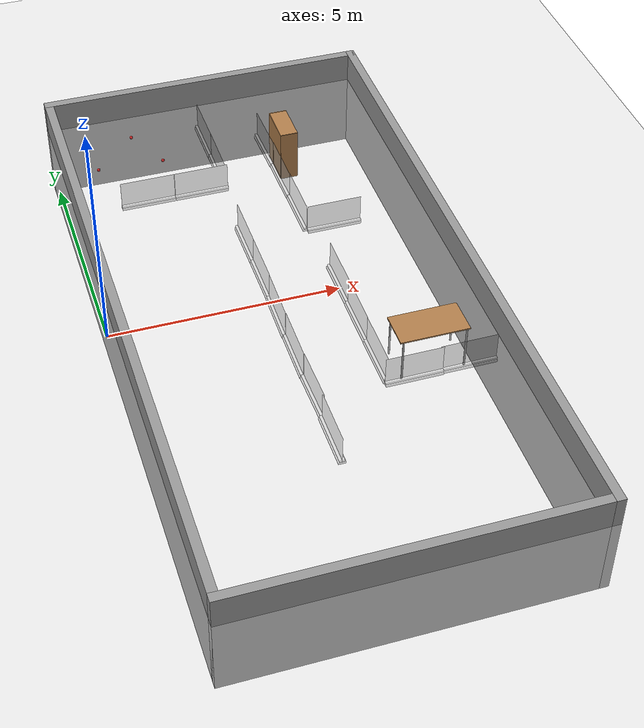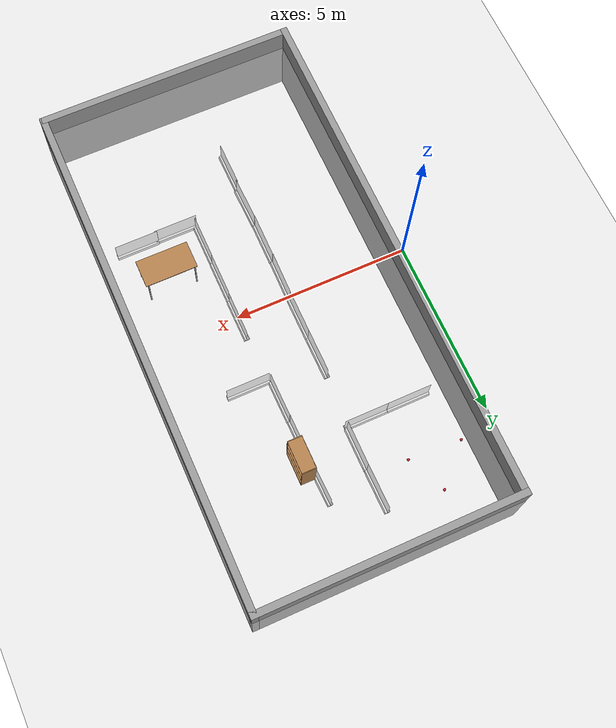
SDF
<sdf version="1.4">
 <world name="default">
  <light name="sun" type="directional">
   <pose>0 0 10 0 -0 0</pose>
   <diffuse>0.8 0.8 0.8 1</diffuse>
   <specular>0.2 0.2 0.2 1</specular>
   <attenuation>
    <range>1000</range>
    <constant>0.9</constant>
    <linear>0.01</linear>
    <quadratic>0.001</quadratic>
   </attenuation>
   <direction>-0.5 0.1 -0.9</direction>
  </light>
  <model name="ground_plane">
   <static>1</static>
   <link name="link">
    <collision name="collision">
     <geometry><plane><normal>0 0 1</normal><size>100 100</size></plane></geometry>
     <surface><friction><ode><mu>100</mu><mu2>50</mu2></ode></friction></surface>
    </collision>
    <visual name="visual">
     <cast_shadows>0</cast_shadows>
     <geometry><plane><normal>0 0 1</normal><size>100 100</size></plane></geometry>
     <material>
      <script><uri>file://media/materials/scripts/gazebo.material</uri><name>Gazebo/Grey</name></script>
     </material>
    </visual>
    <velocity_decay><linear>0</linear><angular>0</angular></velocity_decay>
   </link>
  </model>
  <physics type="ode">
   <max_step_size>0.001</max_step_size>
   <real_time_factor>1</real_time_factor>
   <real_time_update_rate>1000</real_time_update_rate>
   <gravity>0 0 -9.8</gravity>
  </physics>
  <scene><ambient>0.4 0.4 0.4 1</ambient><background>0.7 0.7 0.7 1</background><shadows>1</shadows></scene>
  <spherical_coordinates>
   <surface_model>EARTH_WGS84</surface_model>
   <latitude_deg>0</latitude_deg>
   <longitude_deg>0</longitude_deg>
   <elevation>0</elevation>
   <heading_deg>0</heading_deg>
  </spherical_coordinates>
  <model name="fleming_wall_ghost_ghost">
   <static>1</static>
   <link name="wall">
    <pose>0 0 0.0254 0 -0 0</pose>
    <collision name="base_collision"><geometry><box><size>1.2192 0.1524 0.0508</size></box></geometry></collision>
    <visual name="base_visual">
     <transparency>0.5</transparency>
     <geometry><box><size>1.2192 0.1524 0.0508</size></box></geometry>
     <material>
      <script>
       <uri>model://fleming_wall_ghost/materials/scripts</uri>
       <uri>model://fleming_wall_ghost/materials/textures</uri>
       <name>FlemingWall/Image</name>
      </script>
     </material>
    </visual>
    <visual name="front_strut_visual">
     <transparency>0.5</transparency>
     <pose>0 0.028575 0.0508 0 -0 0</pose>
     <geometry><box><size>1.2192 0.0508 0.0508</size></box></geometry>
     <material>
      <script>
       <uri>model://fleming_wall_ghost/materials/scripts</uri>
       <uri>model://fleming_wall_ghost/materials/textures</uri>
       <name>FlemingWall/Image</name>
      </script>
     </material>
    </visual>
    <visual name="back_strut_visual">
     <transparency>0.5</transparency>
     <pose>0 -0.028575 0.0508 0 -0 0</pose>
     <geometry><box><size>1.2192 0.0508 0.0508</size></box></geometry>
     <material>
      <script>
       <uri>model://fleming_wall_ghost/materials/scripts</uri>
       <uri>model://fleming_wall_ghost/materials/textures</uri>
       <name>FlemingWall/Image</name>
      </script>
     </material>
    </visual>
    <visual name="panel_visual">
     <transparency>0.5</transparency>
     <pose>0 0 0.3556 0 -0 0</pose>
     <geometry><box><size>1.2192 0.003175 0.6096</size></box></geometry>
     <material>
      <script>
       <uri>model://fleming_wall_ghost/materials/scripts</uri>
       <uri>model://fleming_wall_ghost/materials/textures</uri>
       <name>FlemingWall/Image</name>
      </script>
     </material>
    </visual>
    <velocity_decay><linear>0</linear><angular>0</angular></velocity_decay>
   </link>
   <pose>3.49426 0.714997 0 0 0 -1.57256</pose>
  </model>
  <model name="fleming_wall_ghost_ghost_0">
   <static>1</static>
   <link name="wall">
    <pose>0 0 0.0254 0 -0 0</pose>
    <collision name="base_collision"><geometry><box><size>1.2192 0.1524 0.0508</size></box></geometry></collision>
    <visual name="base_visual">
     <transparency>0.5</transparency>
     <geometry><box><size>1.2192 0.1524 0.0508</size></box></geometry>
     <material>
      <script>
       <uri>model://fleming_wall_ghost/materials/scripts</uri>
       <uri>model://fleming_wall_ghost/materials/textures</uri>
       <name>FlemingWall/Image</name>
      </script>
     </material>
    </visual>
    <visual name="front_strut_visual">
     <transparency>0.5</transparency>
     <pose>0 0.028575 0.0508 0 -0 0</pose>
     <geometry><box><size>1.2192 0.0508 0.0508</size></box></geometry>
     <material>
      <script>
       <uri>model://fleming_wall_ghost/materials/scripts</uri>
       <uri>model://fleming_wall_ghost/materials/textures</uri>
       <name>FlemingWall/Image</name>
      </script>
     </material>
    </visual>
    <visual name="back_strut_visual">
     <transparency>0.5</transparency>
     <pose>0 -0.028575 0.0508 0 -0 0</pose>
     <geometry><box><size>1.2192 0.0508 0.0508</size></box></geometry>
     <material>
      <script>
       <uri>model://fleming_wall_ghost/materials/scripts</uri>
       <uri>model://fleming_wall_ghost/materials/textures</uri>
       <name>FlemingWall/Image</name>
      </script>
     </material>
    </visual>
    <visual name="panel_visual">
     <transparency>0.5</transparency>
     <pose>0 0 0.3556 0 -0 0</pose>
     <geometry><box><size>1.2192 0.003175 0.6096</size></box></geometry>
     <material>
      <script>
       <uri>model://fleming_wall_ghost/materials/scripts</uri>
       <uri>model://fleming_wall_ghost/materials/textures</uri>
       <name>FlemingWall/Image</name>
      </script>
     </material>
    </visual>
    <velocity_decay><linear>0</linear><angular>0</angular></velocity_decay>
   </link>
   <pose>3.49471 1.93732 0 0 0 -1.56922</pose>
  </model>
  <model name="fleming_wall_ghost_ghost_1">
   <static>1</static>
   <link name="wall">
    <pose>0 0 0.0254 0 -0 0</pose>
    <collision name="base_collision"><geometry><box><size>1.2192 0.1524 0.0508</size></box></geometry></collision>
    <visual name="base_visual">
     <transparency>0.5</transparency>
     <geometry><box><size>1.2192 0.1524 0.0508</size></box></geometry>
     <material>
      <script>
       <uri>model://fleming_wall_ghost/materials/scripts</uri>
       <uri>model://fleming_wall_ghost/materials/textures</uri>
       <name>FlemingWall/Image</name>
      </script>
     </material>
    </visual>
    <visual name="front_strut_visual">
     <transparency>0.5</transparency>
     <pose>0 0.028575 0.0508 0 -0 0</pose>
     <geometry><box><size>1.2192 0.0508 0.0508</size></box></geometry>
     <material>
      <script>
       <uri>model://fleming_wall_ghost/materials/scripts</uri>
       <uri>model://fleming_wall_ghost/materials/textures</uri>
       <name>FlemingWall/Image</name>
      </script>
     </material>
    </visual>
    <visual name="back_strut_visual">
     <transparency>0.5</transparency>
     <pose>0 -0.028575 0.0508 0 -0 0</pose>
     <geometry><box><size>1.2192 0.0508 0.0508</size></box></geometry>
     <material>
      <script>
       <uri>model://fleming_wall_ghost/materials/scripts</uri>
       <uri>model://fleming_wall_ghost/materials/textures</uri>
       <name>FlemingWall/Image</name>
      </script>
     </material>
    </visual>
    <visual name="panel_visual">
     <transparency>0.5</transparency>
     <pose>0 0 0.3556 0 -0 0</pose>
     <geometry><box><size>1.2192 0.003175 0.6096</size></box></geometry>
     <material>
      <script>
       <uri>model://fleming_wall_ghost/materials/scripts</uri>
       <uri>model://fleming_wall_ghost/materials/textures</uri>
       <name>FlemingWall/Image</name>
      </script>
     </material>
    </visual>
    <velocity_decay><linear>0</linear><angular>0</angular></velocity_decay>
   </link>
   <pose>1.82476 3.99325 0 0 -0 0</pose>
  </model>
  <model name="fleming_wall_ghost_ghost_2">
   <static>1</static>
   <link name="wall">
    <pose>0 0 0.0254 0 -0 0</pose>
    <collision name="base_collision"><geometry><box><size>1.2192 0.1524 0.0508</size></box></geometry></collision>
    <visual name="base_visual">
     <transparency>0.5</transparency>
     <geometry><box><size>1.2192 0.1524 0.0508</size></box></geometry>
     <material>
      <script>
       <uri>model://fleming_wall_ghost/materials/scripts</uri>
       <uri>model://fleming_wall_ghost/materials/textures</uri>
       <name>FlemingWall/Image</name>
      </script>
     </material>
    </visual>
    <visual name="front_strut_visual">
     <transparency>0.5</transparency>
     <pose>0 0.028575 0.0508 0 -0 0</pose>
     <geometry><box><size>1.2192 0.0508 0.0508</size></box></geometry>
     <material>
      <script>
       <uri>model://fleming_wall_ghost/materials/scripts</uri>
       <uri>model://fleming_wall_ghost/materials/textures</uri>
       <name>FlemingWall/Image</name>
      </script>
     </material>
    </visual>
    <visual name="back_strut_visual">
     <transparency>0.5</transparency>
     <pose>0 -0.028575 0.0508 0 -0 0</pose>
     <geometry><box><size>1.2192 0.0508 0.0508</size></box></geometry>
     <material>
      <script>
       <uri>model://fleming_wall_ghost/materials/scripts</uri>
       <uri>model://fleming_wall_ghost/materials/textures</uri>
       <name>FlemingWall/Image</name>
      </script>
     </material>
    </visual>
    <visual name="panel_visual">
     <transparency>0.5</transparency>
     <pose>0 0 0.3556 0 -0 0</pose>
     <geometry><box><size>1.2192 0.003175 0.6096</size></box></geometry>
     <material>
      <script>
       <uri>model://fleming_wall_ghost/materials/scripts</uri>
       <uri>model://fleming_wall_ghost/materials/textures</uri>
       <name>FlemingWall/Image</name>
      </script>
     </material>
    </visual>
    <velocity_decay><linear>0</linear><angular>0</angular></velocity_decay>
   </link>
   <pose>3.05484 3.99256 0 0 -0 0</pose>
  </model>
  <model name="fleming_wall_ghost_ghost_3">
   <static>1</static>
   <link name="wall">
    <pose>0 0 0.0254 0 -0 0</pose>
    <collision name="base_collision"><geometry><box><size>1.2192 0.1524 0.0508</size></box></geometry></collision>
    <visual name="base_visual">
     <transparency>0.5</transparency>
     <geometry><box><size>1.2192 0.1524 0.0508</size></box></geometry>
     <material>
      <script>
       <uri>model://fleming_wall_ghost/materials/scripts</uri>
       <uri>model://fleming_wall_ghost/materials/textures</uri>
       <name>FlemingWall/Image</name>
      </script>
     </material>
    </visual>
    <visual name="front_strut_visual">
     <transparency>0.5</transparency>
     <pose>0 0.028575 0.0508 0 -0 0</pose>
     <geometry><box><size>1.2192 0.0508 0.0508</size></box></geometry>
     <material>
      <script>
       <uri>model://fleming_wall_ghost/materials/scripts</uri>
       <uri>model://fleming_wall_ghost/materials/textures</uri>
       <name>FlemingWall/Image</name>
      </script>
     </material>
    </visual>
    <visual name="back_strut_visual">
     <transparency>0.5</transparency>
     <pose>0 -0.028575 0.0508 0 -0 0</pose>
     <geometry><box><size>1.2192 0.0508 0.0508</size></box></geometry>
     <material>
      <script>
       <uri>model://fleming_wall_ghost/materials/scripts</uri>
       <uri>model://fleming_wall_ghost/materials/textures</uri>
       <name>FlemingWall/Image</name>
      </script>
     </material>
    </visual>
    <visual name="panel_visual">
     <transparency>0.5</transparency>
     <pose>0 0 0.3556 0 -0 0</pose>
     <geometry><box><size>1.2192 0.003175 0.6096</size></box></geometry>
     <material>
      <script>
       <uri>model://fleming_wall_ghost/materials/scripts</uri>
       <uri>model://fleming_wall_ghost/materials/textures</uri>
       <name>FlemingWall/Image</name>
      </script>
     </material>
    </visual>
    <velocity_decay><linear>0</linear><angular>0</angular></velocity_decay>
   </link>
   <pose>3.61189 4.62677 -0 0 0 -1.57705</pose>
  </model>
  <model name="fleming_wall_ghost_ghost_4">
   <static>1</static>
   <link name="wall">
    <pose>0 0 0.0254 0 -0 0</pose>
    <collision name="base_collision"><geometry><box><size>1.2192 0.1524 0.0508</size></box></geometry></collision>
    <visual name="base_visual">
     <transparency>0.5</transparency>
     <geometry><box><size>1.2192 0.1524 0.0508</size></box></geometry>
     <material>
      <script>
       <uri>model://fleming_wall_ghost/materials/scripts</uri>
       <uri>model://fleming_wall_ghost/materials/textures</uri>
       <name>FlemingWall/Image</name>
      </script>
     </material>
    </visual>
    <visual name="front_strut_visual">
     <transparency>0.5</transparency>
     <pose>0 0.028575 0.0508 0 -0 0</pose>
     <geometry><box><size>1.2192 0.0508 0.0508</size></box></geometry>
     <material>
      <script>
       <uri>model://fleming_wall_ghost/materials/scripts</uri>
       <uri>model://fleming_wall_ghost/materials/textures</uri>
       <name>FlemingWall/Image</name>
      </script>
     </material>
    </visual>
    <visual name="back_strut_visual">
     <transparency>0.5</transparency>
     <pose>0 -0.028575 0.0508 0 -0 0</pose>
     <geometry><box><size>1.2192 0.0508 0.0508</size></box></geometry>
     <material>
      <script>
       <uri>model://fleming_wall_ghost/materials/scripts</uri>
       <uri>model://fleming_wall_ghost/materials/textures</uri>
       <name>FlemingWall/Image</name>
      </script>
     </material>
    </visual>
    <visual name="panel_visual">
     <transparency>0.5</transparency>
     <pose>0 0 0.3556 0 -0 0</pose>
     <geometry><box><size>1.2192 0.003175 0.6096</size></box></geometry>
     <material>
      <script>
       <uri>model://fleming_wall_ghost/materials/scripts</uri>
       <uri>model://fleming_wall_ghost/materials/textures</uri>
       <name>FlemingWall/Image</name>
      </script>
     </material>
    </visual>
    <velocity_decay><linear>0</linear><angular>0</angular></velocity_decay>
   </link>
   <pose>3.6099 5.84798 -0.002828 0 0 -1.56568</pose>
  </model>
  <model name="fleming_wall_ghost_ghost_5">
   <static>1</static>
   <link name="wall">
    <pose>0 0 0.0254 0 -0 0</pose>
    <collision name="base_collision"><geometry><box><size>1.2192 0.1524 0.0508</size></box></geometry></collision>
    <visual name="base_visual">
     <transparency>0.5</transparency>
     <geometry><box><size>1.2192 0.1524 0.0508</size></box></geometry>
     <material>
      <script>
       <uri>model://fleming_wall_ghost/materials/scripts</uri>
       <uri>model://fleming_wall_ghost/materials/textures</uri>
       <name>FlemingWall/Image</name>
      </script>
     </material>
    </visual>
    <visual name="front_strut_visual">
     <transparency>0.5</transparency>
     <pose>0 0.028575 0.0508 0 -0 0</pose>
     <geometry><box><size>1.2192 0.0508 0.0508</size></box></geometry>
     <material>
      <script>
       <uri>model://fleming_wall_ghost/materials/scripts</uri>
       <uri>model://fleming_wall_ghost/materials/textures</uri>
       <name>FlemingWall/Image</name>
      </script>
     </material>
    </visual>
    <visual name="back_strut_visual">
     <transparency>0.5</transparency>
     <pose>0 -0.028575 0.0508 0 -0 0</pose>
     <geometry><box><size>1.2192 0.0508 0.0508</size></box></geometry>
     <material>
      <script>
       <uri>model://fleming_wall_ghost/materials/scripts</uri>
       <uri>model://fleming_wall_ghost/materials/textures</uri>
       <name>FlemingWall/Image</name>
      </script>
     </material>
    </visual>
    <visual name="panel_visual">
     <transparency>0.5</transparency>
     <pose>0 0 0.3556 0 -0 0</pose>
     <geometry><box><size>1.2192 0.003175 0.6096</size></box></geometry>
     <material>
      <script>
       <uri>model://fleming_wall_ghost/materials/scripts</uri>
       <uri>model://fleming_wall_ghost/materials/textures</uri>
       <name>FlemingWall/Image</name>
      </script>
     </material>
    </visual>
    <velocity_decay><linear>0</linear><angular>0</angular></velocity_decay>
   </link>
   <pose>5.53795 2 0 0 -0 0</pose>
  </model>
  <model name="fleming_wall_ghost_ghost_6">
   <static>1</static>
   <link name="wall">
    <pose>0 0 0.0254 0 -0 0</pose>
    <collision name="base_collision"><geometry><box><size>1.2192 0.1524 0.0508</size></box></geometry></collision>
    <visual name="base_visual">
     <transparency>0.5</transparency>
     <geometry><box><size>1.2192 0.1524 0.0508</size></box></geometry>
     <material>
      <script>
       <uri>model://fleming_wall_ghost/materials/scripts</uri>
       <uri>model://fleming_wall_ghost/materials/textures</uri>
       <name>FlemingWall/Image</name>
      </script>
     </material>
    </visual>
    <visual name="front_strut_visual">
     <transparency>0.5</transparency>
     <pose>0 0.028575 0.0508 0 -0 0</pose>
     <geometry><box><size>1.2192 0.0508 0.0508</size></box></geometry>
     <material>
      <script>
       <uri>model://fleming_wall_ghost/materials/scripts</uri>
       <uri>model://fleming_wall_ghost/materials/textures</uri>
       <name>FlemingWall/Image</name>
      </script>
     </material>
    </visual>
    <visual name="back_strut_visual">
     <transparency>0.5</transparency>
     <pose>0 -0.028575 0.0508 0 -0 0</pose>
     <geometry><box><size>1.2192 0.0508 0.0508</size></box></geometry>
     <material>
      <script>
       <uri>model://fleming_wall_ghost/materials/scripts</uri>
       <uri>model://fleming_wall_ghost/materials/textures</uri>
       <name>FlemingWall/Image</name>
      </script>
     </material>
    </visual>
    <visual name="panel_visual">
     <transparency>0.5</transparency>
     <pose>0 0 0.3556 0 -0 0</pose>
     <geometry><box><size>1.2192 0.003175 0.6096</size></box></geometry>
     <material>
      <script>
       <uri>model://fleming_wall_ghost/materials/scripts</uri>
       <uri>model://fleming_wall_ghost/materials/textures</uri>
       <name>FlemingWall/Image</name>
      </script>
     </material>
    </visual>
    <velocity_decay><linear>0</linear><angular>0</angular></velocity_decay>
   </link>
   <pose>4.91044 2.63531 0 0 0 -1.56709</pose>
  </model>
  <model name="fleming_wall_ghost_ghost_7">
   <static>1</static>
   <link name="wall">
    <pose>0 0 0.0254 0 -0 0</pose>
    <collision name="base_collision"><geometry><box><size>1.2192 0.1524 0.0508</size></box></geometry></collision>
    <visual name="base_visual">
     <transparency>0.5</transparency>
     <geometry><box><size>1.2192 0.1524 0.0508</size></box></geometry>
     <material>
      <script>
       <uri>model://fleming_wall_ghost/materials/scripts</uri>
       <uri>model://fleming_wall_ghost/materials/textures</uri>
       <name>FlemingWall/Image</name>
      </script>
     </material>
    </visual>
    <visual name="front_strut_visual">
     <transparency>0.5</transparency>
     <pose>0 0.028575 0.0508 0 -0 0</pose>
     <geometry><box><size>1.2192 0.0508 0.0508</size></box></geometry>
     <material>
      <script>
       <uri>model://fleming_wall_ghost/materials/scripts</uri>
       <uri>model://fleming_wall_ghost/materials/textures</uri>
       <name>FlemingWall/Image</name>
      </script>
     </material>
    </visual>
    <visual name="back_strut_visual">
     <transparency>0.5</transparency>
     <pose>0 -0.028575 0.0508 0 -0 0</pose>
     <geometry><box><size>1.2192 0.0508 0.0508</size></box></geometry>
     <material>
      <script>
       <uri>model://fleming_wall_ghost/materials/scripts</uri>
       <uri>model://fleming_wall_ghost/materials/textures</uri>
       <name>FlemingWall/Image</name>
      </script>
     </material>
    </visual>
    <visual name="panel_visual">
     <transparency>0.5</transparency>
     <pose>0 0 0.3556 0 -0 0</pose>
     <geometry><box><size>1.2192 0.003175 0.6096</size></box></geometry>
     <material>
      <script>
       <uri>model://fleming_wall_ghost/materials/scripts</uri>
       <uri>model://fleming_wall_ghost/materials/textures</uri>
       <name>FlemingWall/Image</name>
      </script>
     </material>
    </visual>
    <velocity_decay><linear>0</linear><angular>0</angular></velocity_decay>
   </link>
   <pose>4.89784 3.86635 0 0 0 -1.56613</pose>
  </model>
  <model name="fleming_wall_ghost_ghost_8">
   <static>1</static>
   <link name="wall">
    <pose>0 0 0.0254 0 -0 0</pose>
    <collision name="base_collision"><geometry><box><size>1.2192 0.1524 0.0508</size></box></geometry></collision>
    <visual name="base_visual">
     <transparency>0.5</transparency>
     <geometry><box><size>1.2192 0.1524 0.0508</size></box></geometry>
     <material>
      <script>
       <uri>model://fleming_wall_ghost/materials/scripts</uri>
       <uri>model://fleming_wall_ghost/materials/textures</uri>
       <name>FlemingWall/Image</name>
      </script>
     </material>
    </visual>
    <visual name="front_strut_visual">
     <transparency>0.5</transparency>
     <pose>0 0.028575 0.0508 0 -0 0</pose>
     <geometry><box><size>1.2192 0.0508 0.0508</size></box></geometry>
     <material>
      <script>
       <uri>model://fleming_wall_ghost/materials/scripts</uri>
       <uri>model://fleming_wall_ghost/materials/textures</uri>
       <name>FlemingWall/Image</name>
      </script>
     </material>
    </visual>
    <visual name="back_strut_visual">
     <transparency>0.5</transparency>
     <pose>0 -0.028575 0.0508 0 -0 0</pose>
     <geometry><box><size>1.2192 0.0508 0.0508</size></box></geometry>
     <material>
      <script>
       <uri>model://fleming_wall_ghost/materials/scripts</uri>
       <uri>model://fleming_wall_ghost/materials/textures</uri>
       <name>FlemingWall/Image</name>
      </script>
     </material>
    </visual>
    <visual name="panel_visual">
     <transparency>0.5</transparency>
     <pose>0 0 0.3556 0 -0 0</pose>
     <geometry><box><size>1.2192 0.003175 0.6096</size></box></geometry>
     <material>
      <script>
       <uri>model://fleming_wall_ghost/materials/scripts</uri>
       <uri>model://fleming_wall_ghost/materials/textures</uri>
       <name>FlemingWall/Image</name>
      </script>
     </material>
    </visual>
    <velocity_decay><linear>0</linear><angular>0</angular></velocity_decay>
   </link>
   <pose>4.87225 5.09132 0 0 0 -1.55042</pose>
  </model>
  <model name="building_template_model">
   <static>1</static>
   <link name="__default__"><velocity_decay><linear>0</linear><angular>0</angular></velocity_decay></link>
  </model>
  <model name="Fleming_big">
   <pose>7.76305 -0.016581 -1.82922 0 -0 1.56866</pose>
   <link name="Wall_0">
    <collision name="Wall_0_Collision">
     <geometry><box><size>15.2 0.2 2.5</size></box></geometry>
     <pose>0 0 1.25 0 -0 0</pose>
    </collision>
    <visual name="Wall_0_Visual">
     <pose>0 0 1.25 0 -0 0</pose>
     <geometry><box><size>15.2 0.2 2.5</size></box></geometry>
     <material>
      <script><uri>file://media/materials/scripts/gazebo.material</uri><name>Gazebo/Grey</name></script>
     </material>
    </visual>
    <velocity_decay><linear>0</linear><angular>0</angular></velocity_decay>
   </link>
   <link name="Wall_2">
    <collision name="Wall_2_Collision">
     <geometry><box><size>7.7 0.2 2.5</size></box></geometry>
     <pose>0 0 1.25 0 -0 0</pose>
    </collision>
    <visual name="Wall_2_Visual">
     <pose>0 0 1.25 0 -0 0</pose>
     <geometry><box><size>7.7 0.2 2.5</size></box></geometry>
     <material>
      <script><uri>file://media/materials/scripts/gazebo.material</uri><name>Gazebo/Grey</name></script>
     </material>
    </visual>
    <velocity_decay><linear>0</linear><angular>0</angular></velocity_decay>
    <pose>-7.5 3.75 0 0 -0 1.5708</pose>
   </link>
   <link name="Wall_3">
    <collision name="Wall_3_Collision">
     <geometry><box><size>15.2 0.2 2.5</size></box></geometry>
     <pose>0 0 1.25 0 -0 0</pose>
    </collision>
    <visual name="Wall_3_Visual">
     <pose>0 0 1.25 0 -0 0</pose>
     <geometry><box><size>15.2 0.2 2.5</size></box></geometry>
     <material>
      <script><uri>file://media/materials/scripts/gazebo.material</uri><name>Gazebo/Grey</name></script>
     </material>
    </visual>
    <velocity_decay><linear>0</linear><angular>0</angular></velocity_decay>
    <pose>0 7.5 0 0 -0 0</pose>
   </link>
   <link name="Wall_4">
    <collision name="Wall_4_Collision">
     <geometry><box><size>7.7 0.2 2.5</size></box></geometry>
     <pose>0 0 1.25 0 -0 0</pose>
    </collision>
    <visual name="Wall_4_Visual">
     <pose>0 0 1.25 0 -0 0</pose>
     <geometry><box><size>7.7 0.2 2.5</size></box></geometry>
     <material>
      <script><uri>file://media/materials/scripts/gazebo.material</uri><name>Gazebo/Grey</name></script>
     </material>
    </visual>
    <velocity_decay><linear>0</linear><angular>0</angular></velocity_decay>
    <pose>7.5 3.75 0 0 0 -1.5708</pose>
   </link>
   <static>1</static>
  </model>
  <model name="fleming_wall_ghost_ghost_9">
   <static>1</static>
   <link name="wall">
    <pose>0 0 0.0254 0 -0 0</pose>
    <collision name="base_collision"><geometry><box><size>1.2192 0.1524 0.0508</size></box></geometry></collision>
    <visual name="base_visual">
     <transparency>0.5</transparency>
     <geometry><box><size>1.2192 0.1524 0.0508</size></box></geometry>
     <material>
      <script>
       <uri>model://fleming_wall_ghost/materials/scripts</uri>
       <uri>model://fleming_wall_ghost/materials/textures</uri>
       <name>FlemingWall/Image</name>
      </script>
     </material>
    </visual>
    <visual name="front_strut_visual">
     <transparency>0.5</transparency>
     <pose>0 0.028575 0.0508 0 -0 0</pose>
     <geometry><box><size>1.2192 0.0508 0.0508</size></box></geometry>
     <material>
      <script>
       <uri>model://fleming_wall_ghost/materials/scripts</uri>
       <uri>model://fleming_wall_ghost/materials/textures</uri>
       <name>FlemingWall/Image</name>
      </script>
     </material>
    </visual>
    <visual name="back_strut_visual">
     <transparency>0.5</transparency>
     <pose>0 -0.028575 0.0508 0 -0 0</pose>
     <geometry><box><size>1.2192 0.0508 0.0508</size></box></geometry>
     <material>
      <script>
       <uri>model://fleming_wall_ghost/materials/scripts</uri>
       <uri>model://fleming_wall_ghost/materials/textures</uri>
       <name>FlemingWall/Image</name>
      </script>
     </material>
    </visual>
    <visual name="panel_visual">
     <transparency>0.5</transparency>
     <pose>0 0 0.3556 0 -0 0</pose>
     <geometry><box><size>1.2192 0.003175 0.6096</size></box></geometry>
     <material>
      <script>
       <uri>model://fleming_wall_ghost/materials/scripts</uri>
       <uri>model://fleming_wall_ghost/materials/textures</uri>
       <name>FlemingWall/Image</name>
      </script>
     </material>
    </visual>
    <velocity_decay><linear>0</linear><angular>0</angular></velocity_decay>
   </link>
   <pose>5.01578 0.091937 0 0 0 -1.57081</pose>
  </model>
  <model name="fleming_wall_ghost_ghost_11">
   <static>1</static>
   <link name="wall">
    <pose>0 0 0.0254 0 -0 0</pose>
    <collision name="base_collision"><geometry><box><size>1.2192 0.1524 0.0508</size></box></geometry></collision>
    <visual name="base_visual">
     <transparency>0.5</transparency>
     <geometry><box><size>1.2192 0.1524 0.0508</size></box></geometry>
     <material>
      <script>
       <uri>model://fleming_wall_ghost/materials/scripts</uri>
       <uri>model://fleming_wall_ghost/materials/textures</uri>
       <name>FlemingWall/Image</name>
      </script>
     </material>
    </visual>
    <visual name="front_strut_visual">
     <transparency>0.5</transparency>
     <pose>0 0.028575 0.0508 0 -0 0</pose>
     <geometry><box><size>1.2192 0.0508 0.0508</size></box></geometry>
     <material>
      <script>
       <uri>model://fleming_wall_ghost/materials/scripts</uri>
       <uri>model://fleming_wall_ghost/materials/textures</uri>
       <name>FlemingWall/Image</name>
      </script>
     </material>
    </visual>
    <visual name="back_strut_visual">
     <transparency>0.5</transparency>
     <pose>0 -0.028575 0.0508 0 -0 0</pose>
     <geometry><box><size>1.2192 0.0508 0.0508</size></box></geometry>
     <material>
      <script>
       <uri>model://fleming_wall_ghost/materials/scripts</uri>
       <uri>model://fleming_wall_ghost/materials/textures</uri>
       <name>FlemingWall/Image</name>
      </script>
     </material>
    </visual>
    <visual name="panel_visual">
     <transparency>0.5</transparency>
     <pose>0 0 0.3556 0 -0 0</pose>
     <geometry><box><size>1.2192 0.003175 0.6096</size></box></geometry>
     <material>
      <script>
       <uri>model://fleming_wall_ghost/materials/scripts</uri>
       <uri>model://fleming_wall_ghost/materials/textures</uri>
       <name>FlemingWall/Image</name>
      </script>
     </material>
    </visual>
    <velocity_decay><linear>0</linear><angular>0</angular></velocity_decay>
   </link>
   <pose>4.99556 -2.35339 0 0 0 -1.57263</pose>
  </model>
  <model name="fleming_wall_ghost_ghost_13">
   <static>1</static>
   <link name="wall">
    <pose>0 0 0.0254 0 -0 0</pose>
    <collision name="base_collision"><geometry><box><size>1.2192 0.1524 0.0508</size></box></geometry></collision>
    <visual name="base_visual">
     <transparency>0.5</transparency>
     <geometry><box><size>1.2192 0.1524 0.0508</size></box></geometry>
     <material>
      <script>
       <uri>model://fleming_wall_ghost/materials/scripts</uri>
       <uri>model://fleming_wall_ghost/materials/textures</uri>
       <name>FlemingWall/Image</name>
      </script>
     </material>
    </visual>
    <visual name="front_strut_visual">
     <transparency>0.5</transparency>
     <pose>0 0.028575 0.0508 0 -0 0</pose>
     <geometry><box><size>1.2192 0.0508 0.0508</size></box></geometry>
     <material>
      <script>
       <uri>model://fleming_wall_ghost/materials/scripts</uri>
       <uri>model://fleming_wall_ghost/materials/textures</uri>
       <name>FlemingWall/Image</name>
      </script>
     </material>
    </visual>
    <visual name="back_strut_visual">
     <transparency>0.5</transparency>
     <pose>0 -0.028575 0.0508 0 -0 0</pose>
     <geometry><box><size>1.2192 0.0508 0.0508</size></box></geometry>
     <material>
      <script>
       <uri>model://fleming_wall_ghost/materials/scripts</uri>
       <uri>model://fleming_wall_ghost/materials/textures</uri>
       <name>FlemingWall/Image</name>
      </script>
     </material>
    </visual>
    <visual name="panel_visual">
     <transparency>0.5</transparency>
     <pose>0 0 0.3556 0 -0 0</pose>
     <geometry><box><size>1.2192 0.003175 0.6096</size></box></geometry>
     <material>
      <script>
       <uri>model://fleming_wall_ghost/materials/scripts</uri>
       <uri>model://fleming_wall_ghost/materials/textures</uri>
       <name>FlemingWall/Image</name>
      </script>
     </material>
    </visual>
    <velocity_decay><linear>0</linear><angular>0</angular></velocity_decay>
   </link>
   <pose>3.47611 -0.500985 0 0 0 -1.59085</pose>
  </model>
  <model name="fleming_wall_ghost_ghost_14">
   <static>1</static>
   <link name="wall">
    <pose>0 0 0.0254 0 -0 0</pose>
    <collision name="base_collision"><geometry><box><size>1.2192 0.1524 0.0508</size></box></geometry></collision>
    <visual name="base_visual">
     <transparency>0.5</transparency>
     <geometry><box><size>1.2192 0.1524 0.0508</size></box></geometry>
     <material>
      <script>
       <uri>model://fleming_wall_ghost/materials/scripts</uri>
       <uri>model://fleming_wall_ghost/materials/textures</uri>
       <name>FlemingWall/Image</name>
      </script>
     </material>
    </visual>
    <visual name="front_strut_visual">
     <transparency>0.5</transparency>
     <pose>0 0.028575 0.0508 0 -0 0</pose>
     <geometry><box><size>1.2192 0.0508 0.0508</size></box></geometry>
     <material>
      <script>
       <uri>model://fleming_wall_ghost/materials/scripts</uri>
       <uri>model://fleming_wall_ghost/materials/textures</uri>
       <name>FlemingWall/Image</name>
      </script>
     </material>
    </visual>
    <visual name="back_strut_visual">
     <transparency>0.5</transparency>
     <pose>0 -0.028575 0.0508 0 -0 0</pose>
     <geometry><box><size>1.2192 0.0508 0.0508</size></box></geometry>
     <material>
      <script>
       <uri>model://fleming_wall_ghost/materials/scripts</uri>
       <uri>model://fleming_wall_ghost/materials/textures</uri>
       <name>FlemingWall/Image</name>
      </script>
     </material>
    </visual>
    <visual name="panel_visual">
     <transparency>0.5</transparency>
     <pose>0 0 0.3556 0 -0 0</pose>
     <geometry><box><size>1.2192 0.003175 0.6096</size></box></geometry>
     <material>
      <script>
       <uri>model://fleming_wall_ghost/materials/scripts</uri>
       <uri>model://fleming_wall_ghost/materials/textures</uri>
       <name>FlemingWall/Image</name>
      </script>
     </material>
    </visual>
    <velocity_decay><linear>0</linear><angular>0</angular></velocity_decay>
   </link>
   <pose>5.00441 -1.14258 0 0 0 -1.5731</pose>
  </model>
  <model name="fleming_wall_ghost_ghost_15">
   <static>1</static>
   <link name="wall">
    <pose>0 0 0.0254 0 -0 0</pose>
    <collision name="base_collision"><geometry><box><size>1.2192 0.1524 0.0508</size></box></geometry></collision>
    <visual name="base_visual">
     <transparency>0.5</transparency>
     <geometry><box><size>1.2192 0.1524 0.0508</size></box></geometry>
     <material>
      <script>
       <uri>model://fleming_wall_ghost/materials/scripts</uri>
       <uri>model://fleming_wall_ghost/materials/textures</uri>
       <name>FlemingWall/Image</name>
      </script>
     </material>
    </visual>
    <visual name="front_strut_visual">
     <transparency>0.5</transparency>
     <pose>0 0.028575 0.0508 0 -0 0</pose>
     <geometry><box><size>1.2192 0.0508 0.0508</size></box></geometry>
     <material>
      <script>
       <uri>model://fleming_wall_ghost/materials/scripts</uri>
       <uri>model://fleming_wall_ghost/materials/textures</uri>
       <name>FlemingWall/Image</name>
      </script>
     </material>
    </visual>
    <visual name="back_strut_visual">
     <transparency>0.5</transparency>
     <pose>0 -0.028575 0.0508 0 -0 0</pose>
     <geometry><box><size>1.2192 0.0508 0.0508</size></box></geometry>
     <material>
      <script>
       <uri>model://fleming_wall_ghost/materials/scripts</uri>
       <uri>model://fleming_wall_ghost/materials/textures</uri>
       <name>FlemingWall/Image</name>
      </script>
     </material>
    </visual>
    <visual name="panel_visual">
     <transparency>0.5</transparency>
     <pose>0 0 0.3556 0 -0 0</pose>
     <geometry><box><size>1.2192 0.003175 0.6096</size></box></geometry>
     <material>
      <script>
       <uri>model://fleming_wall_ghost/materials/scripts</uri>
       <uri>model://fleming_wall_ghost/materials/textures</uri>
       <name>FlemingWall/Image</name>
      </script>
     </material>
    </visual>
    <velocity_decay><linear>0</linear><angular>0</angular></velocity_decay>
   </link>
   <pose>3.46743 -1.73105 0 0 0 -1.58076</pose>
  </model>
  <model name="fleming_wall_ghost_ghost_17">
   <static>1</static>
   <link name="wall">
    <pose>0 0 0.0254 0 -0 0</pose>
    <collision name="base_collision"><geometry><box><size>1.2192 0.1524 0.0508</size></box></geometry></collision>
    <visual name="base_visual">
     <transparency>0.5</transparency>
     <geometry><box><size>1.2192 0.1524 0.0508</size></box></geometry>
     <material>
      <script>
       <uri>model://fleming_wall_ghost/materials/scripts</uri>
       <uri>model://fleming_wall_ghost/materials/textures</uri>
       <name>FlemingWall/Image</name>
      </script>
     </material>
    </visual>
    <visual name="front_strut_visual">
     <transparency>0.5</transparency>
     <pose>0 0.028575 0.0508 0 -0 0</pose>
     <geometry><box><size>1.2192 0.0508 0.0508</size></box></geometry>
     <material>
      <script>
       <uri>model://fleming_wall_ghost/materials/scripts</uri>
       <uri>model://fleming_wall_ghost/materials/textures</uri>
       <name>FlemingWall/Image</name>
      </script>
     </material>
    </visual>
    <visual name="back_strut_visual">
     <transparency>0.5</transparency>
     <pose>0 -0.028575 0.0508 0 -0 0</pose>
     <geometry><box><size>1.2192 0.0508 0.0508</size></box></geometry>
     <material>
      <script>
       <uri>model://fleming_wall_ghost/materials/scripts</uri>
       <uri>model://fleming_wall_ghost/materials/textures</uri>
       <name>FlemingWall/Image</name>
      </script>
     </material>
    </visual>
    <visual name="panel_visual">
     <transparency>0.5</transparency>
     <pose>0 0 0.3556 0 -0 0</pose>
     <geometry><box><size>1.2192 0.003175 0.6096</size></box></geometry>
     <material>
      <script>
       <uri>model://fleming_wall_ghost/materials/scripts</uri>
       <uri>model://fleming_wall_ghost/materials/textures</uri>
       <name>FlemingWall/Image</name>
      </script>
     </material>
    </visual>
    <velocity_decay><linear>0</linear><angular>0</angular></velocity_decay>
   </link>
   <pose>3.48052 -2.94485 0 0 0 -1.55273</pose>
  </model>
  <model name="fleming_wall_ghost_ghost_20">
   <static>1</static>
   <link name="wall">
    <pose>0 0 0.0254 0 -0 0</pose>
    <collision name="base_collision"><geometry><box><size>1.2192 0.1524 0.0508</size></box></geometry></collision>
    <visual name="base_visual">
     <transparency>0.5</transparency>
     <geometry><box><size>1.2192 0.1524 0.0508</size></box></geometry>
     <material>
      <script>
       <uri>model://fleming_wall_ghost/materials/scripts</uri>
       <uri>model://fleming_wall_ghost/materials/textures</uri>
       <name>FlemingWall/Image</name>
      </script>
     </material>
    </visual>
    <visual name="front_strut_visual">
     <transparency>0.5</transparency>
     <pose>0 0.028575 0.0508 0 -0 0</pose>
     <geometry><box><size>1.2192 0.0508 0.0508</size></box></geometry>
     <material>
      <script>
       <uri>model://fleming_wall_ghost/materials/scripts</uri>
       <uri>model://fleming_wall_ghost/materials/textures</uri>
       <name>FlemingWall/Image</name>
      </script>
     </material>
    </visual>
    <visual name="back_strut_visual">
     <transparency>0.5</transparency>
     <pose>0 -0.028575 0.0508 0 -0 0</pose>
     <geometry><box><size>1.2192 0.0508 0.0508</size></box></geometry>
     <material>
      <script>
       <uri>model://fleming_wall_ghost/materials/scripts</uri>
       <uri>model://fleming_wall_ghost/materials/textures</uri>
       <name>FlemingWall/Image</name>
      </script>
     </material>
    </visual>
    <visual name="panel_visual">
     <transparency>0.5</transparency>
     <pose>0 0 0.3556 0 -0 0</pose>
     <geometry><box><size>1.2192 0.003175 0.6096</size></box></geometry>
     <material>
      <script>
       <uri>model://fleming_wall_ghost/materials/scripts</uri>
       <uri>model://fleming_wall_ghost/materials/textures</uri>
       <name>FlemingWall/Image</name>
      </script>
     </material>
    </visual>
    <velocity_decay><linear>0</linear><angular>0</angular></velocity_decay>
   </link>
   <pose>3.46861 -4.12489 0 -8.67372e-19 0.00496 -1.57098</pose>
  </model>
  <model name="table">
   <static>1</static>
   <link name="link">
    <collision name="surface">
     <pose>0 0 1 0 -0 0</pose>
     <geometry><box><size>1.5 0.8 0.03</size></box></geometry>
     <surface><friction><ode><mu>0.6</mu><mu2>0.6</mu2></ode></friction></surface>
    </collision>
    <visual name="visual1">
     <pose>0 0 1 0 -0 0</pose>
     <geometry><box><size>1.5 0.8 0.03</size></box></geometry>
     <material>
      <script><uri>file://media/materials/scripts/gazebo.material</uri><name>Gazebo/Wood</name></script>
     </material>
    </visual>
    <collision name="front_left_leg">
     <pose>0.68 0.38 0.5 0 -0 0</pose>
     <geometry><cylinder><radius>0.02</radius><length>1</length></cylinder></geometry>
    </collision>
    <visual name="front_left_leg">
     <pose>0.68 0.38 0.5 0 -0 0</pose>
     <geometry><cylinder><radius>0.02</radius><length>1</length></cylinder></geometry>
     <material>
      <script><uri>file://media/materials/scripts/gazebo.material</uri><name>Gazebo/Grey</name></script>
     </material>
    </visual>
    <collision name="front_right_leg">
     <pose>0.68 -0.38 0.5 0 -0 0</pose>
     <geometry><cylinder><radius>0.02</radius><length>1</length></cylinder></geometry>
    </collision>
    <visual name="front_right_leg">
     <pose>0.68 -0.38 0.5 0 -0 0</pose>
     <geometry><cylinder><radius>0.02</radius><length>1</length></cylinder></geometry>
     <material>
      <script><uri>file://media/materials/scripts/gazebo.material</uri><name>Gazebo/Grey</name></script>
     </material>
    </visual>
    <collision name="back_right_leg">
     <pose>-0.68 -0.38 0.5 0 -0 0</pose>
     <geometry><cylinder><radius>0.02</radius><length>1</length></cylinder></geometry>
    </collision>
    <visual name="back_right_leg">
     <pose>-0.68 -0.38 0.5 0 -0 0</pose>
     <geometry><cylinder><radius>0.02</radius><length>1</length></cylinder></geometry>
     <material>
      <script><uri>file://media/materials/scripts/gazebo.material</uri><name>Gazebo/Grey</name></script>
     </material>
    </visual>
    <collision name="back_left_leg">
     <pose>-0.68 0.38 0.5 0 -0 0</pose>
     <geometry><cylinder><radius>0.02</radius><length>1</length></cylinder></geometry>
    </collision>
    <visual name="back_left_leg">
     <pose>-0.68 0.38 0.5 0 -0 0</pose>
     <geometry><cylinder><radius>0.02</radius><length>1</length></cylinder></geometry>
     <material>
      <script><uri>file://media/materials/scripts/gazebo.material</uri><name>Gazebo/Grey</name></script>
     </material>
    </visual>
    <velocity_decay><linear>0</linear><angular>0</angular></velocity_decay>
   </link>
   <pose>6.20488 -2.05237 -0.523414 0 -0 0</pose>
  </model>
  <model name="bookshelf">
   <static>1</static>
   <link name="link">
    <inertial><mass>1</mass></inertial>
    <collision name="back">
     <pose>0 0.005 0.6 0 -0 0</pose>
     <geometry><box><size>0.9 0.01 1.2</size></box></geometry>
    </collision>
    <visual name="visual1">
     <pose>0 0.005 0.6 0 -0 0</pose>
     <geometry><box><size>0.9 0.01 1.2</size></box></geometry>
     <material>
      <script><uri>file://media/materials/scripts/gazebo.material</uri><name>Gazebo/Wood</name></script>
     </material>
    </visual>
    <collision name="left_side">
     <pose>0.45 -0.195 0.6 0 -0 0</pose>
     <geometry><box><size>0.02 0.4 1.2</size></box></geometry>
    </collision>
    <visual name="visual2">
     <pose>0.45 -0.195 0.6 0 -0 0</pose>
     <geometry><box><size>0.02 0.4 1.2</size></box></geometry>
     <material>
      <script><uri>file://media/materials/scripts/gazebo.material</uri><name>Gazebo/Wood</name></script>
     </material>
    </visual>
    <collision name="right_side">
     <pose>-0.45 -0.195 0.6 0 -0 0</pose>
     <geometry><box><size>0.02 0.4 1.2</size></box></geometry>
    </collision>
    <visual name="visual3">
     <pose>-0.45 -0.195 0.6 0 -0 0</pose>
     <geometry><box><size>0.02 0.4 1.2</size></box></geometry>
     <material>
      <script><uri>file://media/materials/scripts/gazebo.material</uri><name>Gazebo/Wood</name></script>
     </material>
    </visual>
    <collision name="bottom">
     <pose>0 -0.195 0.03 0 -0 0</pose>
     <geometry><box><size>0.88 0.4 0.06</size></box></geometry>
    </collision>
    <visual name="visual4">
     <pose>0 -0.195 0.03 0 -0 0</pose>
     <geometry><box><size>0.88 0.4 0.06</size></box></geometry>
     <material>
      <script><uri>file://media/materials/scripts/gazebo.material</uri><name>Gazebo/Wood</name></script>
     </material>
    </visual>
    <collision name="top">
     <pose>0 -0.195 1.19 0 -0 0</pose>
     <geometry><box><size>0.88 0.4 0.02</size></box></geometry>
    </collision>
    <visual name="visual5">
     <pose>0 -0.195 1.19 0 -0 0</pose>
     <geometry><box><size>0.88 0.4 0.02</size></box></geometry>
     <material>
      <script><uri>file://media/materials/scripts/gazebo.material</uri><name>Gazebo/Wood</name></script>
     </material>
    </visual>
    <collision name="low_shelf">
     <pose>0 -0.195 0.43 0 -0 0</pose>
     <geometry><box><size>0.88 0.4 0.02</size></box></geometry>
    </collision>
    <visual name="visual6">
     <pose>0 -0.195 0.43 0 -0 0</pose>
     <geometry><box><size>0.88 0.4 0.02</size></box></geometry>
     <material>
      <script><uri>file://media/materials/scripts/gazebo.material</uri><name>Gazebo/Wood</name></script>
     </material>
    </visual>
    <collision name="high_shelf">
     <pose>0 -0.195 0.8 0 -0 0</pose>
     <geometry><box><size>0.88 0.4 0.02</size></box></geometry>
    </collision>
    <visual name="visual7">
     <pose>0 -0.195 0.8 0 -0 0</pose>
     <geometry><box><size>0.88 0.4 0.02</size></box></geometry>
     <material>
      <script><uri>file://media/materials/scripts/gazebo.material</uri><name>Gazebo/Wood</name></script>
     </material>
    </visual>
    <velocity_decay><linear>0</linear><angular>0</angular></velocity_decay>
   </link>
   <pose>4.93092 4.44808 0 0 -0 1.56713</pose>
  </model>
  <model name="fleming_wall_ghost_ghost_23">
   <static>1</static>
   <link name="wall">
    <pose>0 0 0.0254 0 -0 0</pose>
    <collision name="base_collision"><geometry><box><size>1.2192 0.1524 0.0508</size></box></geometry></collision>
    <visual name="base_visual">
     <transparency>0.5</transparency>
     <geometry><box><size>1.2192 0.1524 0.0508</size></box></geometry>
     <material>
      <script>
       <uri>model://fleming_wall_ghost/materials/scripts</uri>
       <uri>model://fleming_wall_ghost/materials/textures</uri>
       <name>FlemingWall/Image</name>
      </script>
     </material>
    </visual>
    <visual name="front_strut_visual">
     <transparency>0.5</transparency>
     <pose>0 0.028575 0.0508 0 -0 0</pose>
     <geometry><box><size>1.2192 0.0508 0.0508</size></box></geometry>
     <material>
      <script>
       <uri>model://fleming_wall_ghost/materials/scripts</uri>
       <uri>model://fleming_wall_ghost/materials/textures</uri>
       <name>FlemingWall/Image</name>
      </script>
     </material>
    </visual>
    <visual name="back_strut_visual">
     <transparency>0.5</transparency>
     <pose>0 -0.028575 0.0508 0 -0 0</pose>
     <geometry><box><size>1.2192 0.0508 0.0508</size></box></geometry>
     <material>
      <script>
       <uri>model://fleming_wall_ghost/materials/scripts</uri>
       <uri>model://fleming_wall_ghost/materials/textures</uri>
       <name>FlemingWall/Image</name>
      </script>
     </material>
    </visual>
    <visual name="panel_visual">
     <transparency>0.5</transparency>
     <pose>0 0 0.3556 0 -0 0</pose>
     <geometry><box><size>1.2192 0.003175 0.6096</size></box></geometry>
     <material>
      <script>
       <uri>model://fleming_wall_ghost/materials/scripts</uri>
       <uri>model://fleming_wall_ghost/materials/textures</uri>
       <name>FlemingWall/Image</name>
      </script>
     </material>
    </visual>
    <velocity_decay><linear>0</linear><angular>0</angular></velocity_decay>
   </link>
   <pose>5.5525 -3 0 0 -0 0</pose>
  </model>
  <model name="fleming_wall_ghost_ghost_24">
   <static>1</static>
   <link name="wall">
    <pose>0 0 0.0254 0 -0 0</pose>
    <collision name="base_collision"><geometry><box><size>1.2192 0.1524 0.0508</size></box></geometry></collision>
    <visual name="base_visual">
     <transparency>0.5</transparency>
     <geometry><box><size>1.2192 0.1524 0.0508</size></box></geometry>
     <material>
      <script>
       <uri>model://fleming_wall_ghost/materials/scripts</uri>
       <uri>model://fleming_wall_ghost/materials/textures</uri>
       <name>FlemingWall/Image</name>
      </script>
     </material>
    </visual>
    <visual name="front_strut_visual">
     <transparency>0.5</transparency>
     <pose>0 0.028575 0.0508 0 -0 0</pose>
     <geometry><box><size>1.2192 0.0508 0.0508</size></box></geometry>
     <material>
      <script>
       <uri>model://fleming_wall_ghost/materials/scripts</uri>
       <uri>model://fleming_wall_ghost/materials/textures</uri>
       <name>FlemingWall/Image</name>
      </script>
     </material>
    </visual>
    <visual name="back_strut_visual">
     <transparency>0.5</transparency>
     <pose>0 -0.028575 0.0508 0 -0 0</pose>
     <geometry><box><size>1.2192 0.0508 0.0508</size></box></geometry>
     <material>
      <script>
       <uri>model://fleming_wall_ghost/materials/scripts</uri>
       <uri>model://fleming_wall_ghost/materials/textures</uri>
       <name>FlemingWall/Image</name>
      </script>
     </material>
    </visual>
    <visual name="panel_visual">
     <transparency>0.5</transparency>
     <pose>0 0 0.3556 0 -0 0</pose>
     <geometry><box><size>1.2192 0.003175 0.6096</size></box></geometry>
     <material>
      <script>
       <uri>model://fleming_wall_ghost/materials/scripts</uri>
       <uri>model://fleming_wall_ghost/materials/textures</uri>
       <name>FlemingWall/Image</name>
      </script>
     </material>
    </visual>
    <velocity_decay><linear>0</linear><angular>0</angular></velocity_decay>
   </link>
   <pose>6.70953 -2.97752 0 0 -0 0</pose>
  </model>
  <model name="cricket_ball">
   <link name="link">
    <pose>0 0 0.0375 0 -0 0</pose>
    <inertial>
     <mass>0.1467</mass>
     <inertia>
      <ixx>8.25187e-05</ixx>
      <ixy>0</ixy>
      <ixz>0</ixz>
      <iyy>8.25187e-05</iyy>
      <iyz>0</iyz>
      <izz>8.25187e-05</izz>
     </inertia>
    </inertial>
    <collision name="collision"><geometry><sphere><radius>0.0375</radius></sphere></geometry></collision>
    <visual name="visual">
     <geometry><sphere><radius>0.0375</radius></sphere></geometry>
     <material>
      <script><uri>file://media/materials/scripts/gazebo.material</uri><name>Gazebo/Red</name></script>
     </material>
    </visual>
    <velocity_decay><linear>0</linear><angular>0.005</angular></velocity_decay>
   </link>
   <pose>1 5.50312 -0 0 -0 0</pose>
   <static>0</static>
  </model>
  <model name="cricket_ball_0">
   <link name="link">
    <pose>0 0 0.0375 0 -0 0</pose>
    <inertial>
     <mass>0.1467</mass>
     <inertia>
      <ixx>8.25187e-05</ixx>
      <ixy>0</ixy>
      <ixz>0</ixz>
      <iyy>8.25187e-05</iyy>
      <iyz>0</iyz>
      <izz>8.25187e-05</izz>
     </inertia>
    </inertial>
    <collision name="collision"><geometry><sphere><radius>0.0375</radius></sphere></geometry></collision>
    <visual name="visual">
     <geometry><sphere><radius>0.0375</radius></sphere></geometry>
     <material>
      <script><uri>file://media/materials/scripts/gazebo.material</uri><name>Gazebo/Red</name></script>
     </material>
    </visual>
    <velocity_decay><linear>0</linear><angular>0.005</angular></velocity_decay>
   </link>
   <pose>2 6.51231 -0 0 -0 0</pose>
   <static>0</static>
  </model>
  <model name="cricket_ball_1">
   <link name="link">
    <pose>0 0 0.0375 0 -0 0</pose>
    <inertial>
     <mass>0.1467</mass>
     <inertia>
      <ixx>8.25187e-05</ixx>
      <ixy>0</ixy>
      <ixz>0</ixz>
      <iyy>8.25187e-05</iyy>
      <iyz>0</iyz>
      <izz>8.25187e-05</izz>
     </inertia>
    </inertial>
    <collision name="collision"><geometry><sphere><radius>0.0375</radius></sphere></geometry></collision>
    <visual name="visual">
     <geometry><sphere><radius>0.0375</radius></sphere></geometry>
     <material>
      <script><uri>file://media/materials/scripts/gazebo.material</uri><name>Gazebo/Red</name></script>
     </material>
    </visual>
    <velocity_decay><linear>0</linear><angular>0.005</angular></velocity_decay>
   </link>
   <pose>2.50124 5.4244 -0 0 -0 0</pose>
   <static>0</static>
  </model>
 </world>
</sdf>
